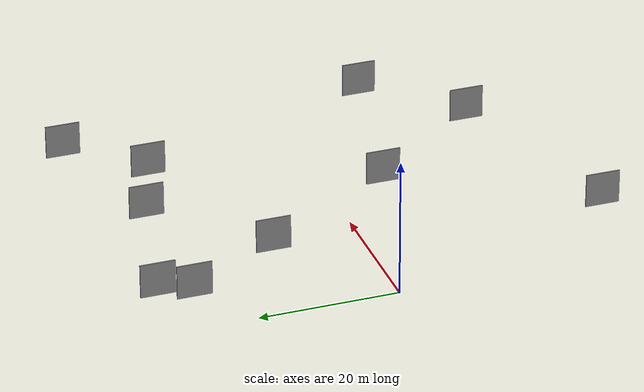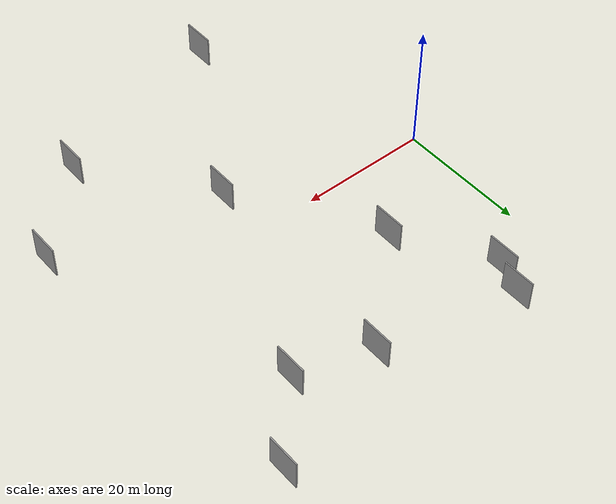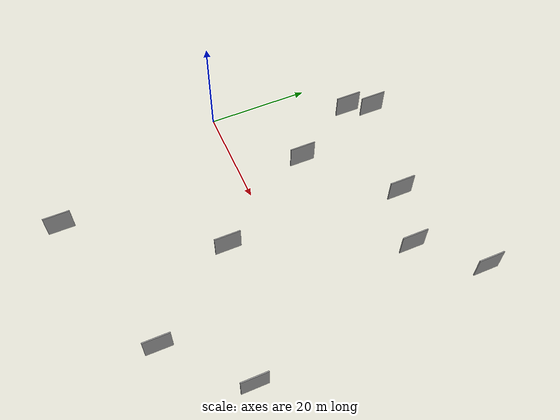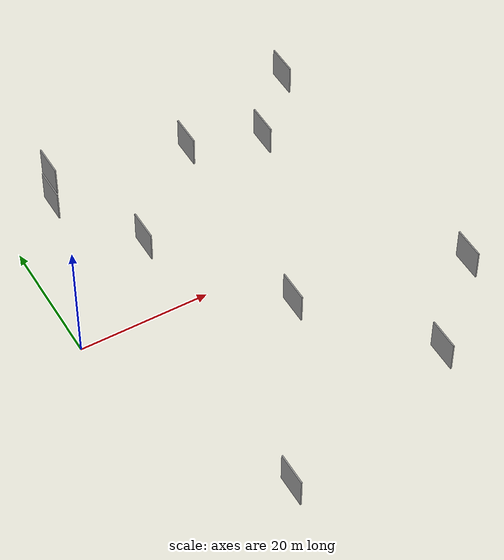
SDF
<sdf version="1.6">
 <world name="default">
  <scene>
   <sky><clouds><speed>12</speed></clouds></sky>
   <ambient>0.4 0.4 0.4 1</ambient>
   <background>0.7 0.7 0.7 1</background>
   <shadows>1</shadows>
  </scene>
  <gravity>0 0 -9.8066</gravity>
  <magnetic_field>6e-06 2.3e-05 -4.2e-05</magnetic_field>
  <physics default="0" name="default_physics" type="ode">
   <ode>
    <solver>
     <type>quick</type>
     <iters>10</iters>
     <sor>1.0</sor>
     <use_dynamic_moi_rescaling>0</use_dynamic_moi_rescaling>
    </solver>
    <constraints>
     <cfm>0</cfm>
     <erp>0.2</erp>
     <contact_max_correcting_vel>100</contact_max_correcting_vel>
     <contact_surface_layer>0.001</contact_surface_layer>
    </constraints>
   </ode>
   <max_step_size>0.004</max_step_size>
   <real_time_factor>1</real_time_factor>
   <real_time_update_rate>250</real_time_update_rate>
  </physics>
  <light name="sun" type="directional">
   <pose>0 0 10 0 0 0</pose>
   <diffuse>0.8 0.8 0.8 1</diffuse>
   <specular>0.2 0.2 0.2 1</specular>
   <attenuation>
    <range>1000</range>
    <constant>0.9</constant>
    <linear>0.01</linear>
    <quadratic>0.001</quadratic>
   </attenuation>
   <direction>-0.5 0.1 -0.9</direction>
  </light>
  <model name="grey_wall_1">
   <static>1</static>
   <pose>29.4375 -8.2727 0.0 0.000000 0.000000 1.570796</pose>
   <link name="link">
    <pose>0 0 2.50 0 0 0</pose>
    <collision name="collision"><geometry><box><size>5.00 0.2 5.00</size></box></geometry></collision>
    <visual name="visual">
     <cast_shadows>0</cast_shadows>
     <geometry><box><size>5.00 0.2 5.00</size></box></geometry>
     <material>
      <script>
       <uri>model://grey_wall/materials/scripts</uri>
       <uri>model://grey_wall/materials/textures</uri>
       <name>vrc/grey_wall</name>
      </script>
     </material>
    </visual>
   </link>
  </model>
  <model name="grey_wall_2">
   <static>1</static>
   <pose>31.0964 26.1631 0.0 0.000000 0.000000 1.570796</pose>
   <link name="link">
    <pose>0 0 2.50 0 0 0</pose>
    <collision name="collision"><geometry><box><size>5.00 0.2 5.00</size></box></geometry></collision>
    <visual name="visual">
     <cast_shadows>0</cast_shadows>
     <geometry><box><size>5.00 0.2 5.00</size></box></geometry>
     <material>
      <script>
       <uri>model://grey_wall/materials/scripts</uri>
       <uri>model://grey_wall/materials/textures</uri>
       <name>vrc/grey_wall</name>
      </script>
     </material>
    </visual>
   </link>
  </model>
  <model name="grey_wall_3">
   <static>1</static>
   <pose>51.6459 32.4187 0.0 0.000000 0.000000 1.570796</pose>
   <link name="link">
    <pose>0 0 2.50 0 0 0</pose>
    <collision name="collision"><geometry><box><size>5.00 0.2 5.00</size></box></geometry></collision>
    <visual name="visual">
     <cast_shadows>0</cast_shadows>
     <geometry><box><size>5.00 0.2 5.00</size></box></geometry>
     <material>
      <script>
       <uri>model://grey_wall/materials/scripts</uri>
       <uri>model://grey_wall/materials/textures</uri>
       <name>vrc/grey_wall</name>
      </script>
     </material>
    </visual>
   </link>
  </model>
  <model name="grey_wall_4">
   <static>1</static>
   <pose>55.4361 -13.8476 0.0 0.000000 0.000000 1.570796</pose>
   <link name="link">
    <pose>0 0 2.50 0 0 0</pose>
    <collision name="collision"><geometry><box><size>5.00 0.2 5.00</size></box></geometry></collision>
    <visual name="visual">
     <cast_shadows>0</cast_shadows>
     <geometry><box><size>5.00 0.2 5.00</size></box></geometry>
     <material>
      <script>
       <uri>model://grey_wall/materials/scripts</uri>
       <uri>model://grey_wall/materials/textures</uri>
       <name>vrc/grey_wall</name>
      </script>
     </material>
    </visual>
   </link>
  </model>
  <model name="grey_wall_5">
   <static>1</static>
   <pose>16.5110 12.4007 0.0 0.000000 0.000000 1.570796</pose>
   <link name="link">
    <pose>0 0 2.50 0 0 0</pose>
    <collision name="collision"><geometry><box><size>5.00 0.2 5.00</size></box></geometry></collision>
    <visual name="visual">
     <cast_shadows>0</cast_shadows>
     <geometry><box><size>5.00 0.2 5.00</size></box></geometry>
     <material>
      <script>
       <uri>model://grey_wall/materials/scripts</uri>
       <uri>model://grey_wall/materials/textures</uri>
       <name>vrc/grey_wall</name>
      </script>
     </material>
    </visual>
   </link>
  </model>
  <model name="grey_wall_6">
   <static>1</static>
   <pose>10.2969 30.8771 0.0 0.000000 0.000000 1.570796</pose>
   <link name="link">
    <pose>0 0 2.50 0 0 0</pose>
    <collision name="collision"><geometry><box><size>5.00 0.2 5.00</size></box></geometry></collision>
    <visual name="visual">
     <cast_shadows>0</cast_shadows>
     <geometry><box><size>5.00 0.2 5.00</size></box></geometry>
     <material>
      <script>
       <uri>model://grey_wall/materials/scripts</uri>
       <uri>model://grey_wall/materials/textures</uri>
       <name>vrc/grey_wall</name>
      </script>
     </material>
    </visual>
   </link>
  </model>
  <model name="grey_wall_7">
   <static>1</static>
   <pose>42.3496 22.5029 0.0 0.000000 0.000000 1.570796</pose>
   <link name="link">
    <pose>0 0 2.50 0 0 0</pose>
    <collision name="collision"><geometry><box><size>5.00 0.2 5.00</size></box></geometry></collision>
    <visual name="visual">
     <cast_shadows>0</cast_shadows>
     <geometry><box><size>5.00 0.2 5.00</size></box></geometry>
     <material>
      <script>
       <uri>model://grey_wall/materials/scripts</uri>
       <uri>model://grey_wall/materials/textures</uri>
       <name>vrc/grey_wall</name>
      </script>
     </material>
    </visual>
   </link>
  </model>
  <model name="grey_wall_8">
   <static>1</static>
   <pose>42.9743 -26.0406 0.0 0.000000 0.000000 1.570796</pose>
   <link name="link">
    <pose>0 0 2.50 0 0 0</pose>
    <collision name="collision"><geometry><box><size>5.00 0.2 5.00</size></box></geometry></collision>
    <visual name="visual">
     <cast_shadows>0</cast_shadows>
     <geometry><box><size>5.00 0.2 5.00</size></box></geometry>
     <material>
      <script>
       <uri>model://grey_wall/materials/scripts</uri>
       <uri>model://grey_wall/materials/textures</uri>
       <name>vrc/grey_wall</name>
      </script>
     </material>
    </visual>
   </link>
  </model>
  <model name="grey_wall_9">
   <static>1</static>
   <pose>8.3910 26.3002 0.0 0.000000 0.000000 1.570796</pose>
   <link name="link">
    <pose>0 0 2.50 0 0 0</pose>
    <collision name="collision"><geometry><box><size>5.00 0.2 5.00</size></box></geometry></collision>
    <visual name="visual">
     <cast_shadows>0</cast_shadows>
     <geometry><box><size>5.00 0.2 5.00</size></box></geometry>
     <material>
      <script>
       <uri>model://grey_wall/materials/scripts</uri>
       <uri>model://grey_wall/materials/textures</uri>
       <name>vrc/grey_wall</name>
      </script>
     </material>
    </visual>
   </link>
  </model>
  <model name="grey_wall_10">
   <static>1</static>
   <pose>13.2826 -35.0811 0.0 0.000000 0.000000 1.570796</pose>
   <link name="link">
    <pose>0 0 2.50 0 0 0</pose>
    <collision name="collision"><geometry><box><size>5.00 0.2 5.00</size></box></geometry></collision>
    <visual name="visual">
     <cast_shadows>0</cast_shadows>
     <geometry><box><size>5.00 0.2 5.00</size></box></geometry>
     <material>
      <script>
       <uri>model://grey_wall/materials/scripts</uri>
       <uri>model://grey_wall/materials/textures</uri>
       <name>vrc/grey_wall</name>
      </script>
     </material>
    </visual>
   </link>
  </model>
 </world>
</sdf>
